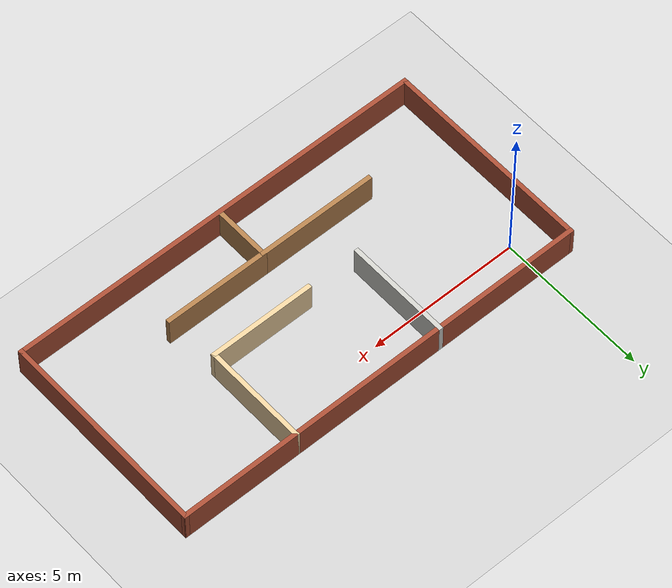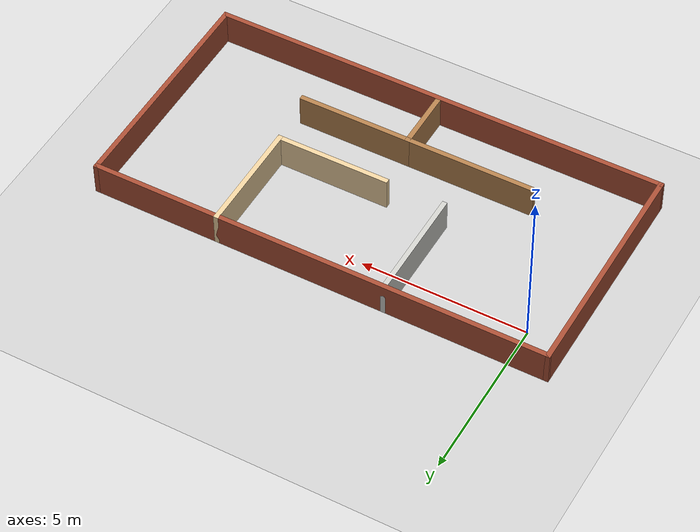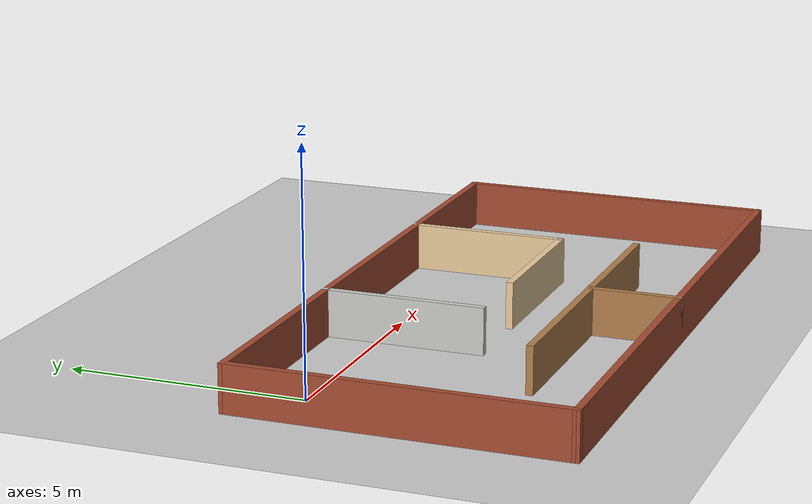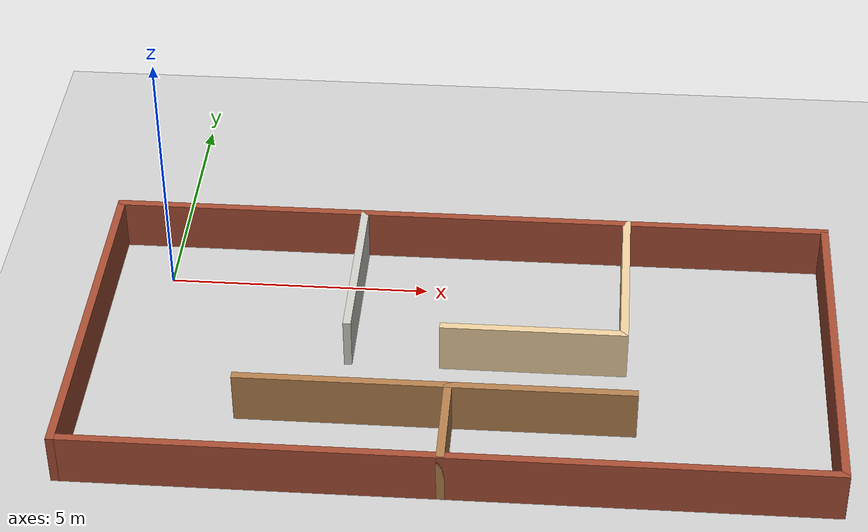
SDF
<sdf version="1.7">
 <world name="default">
  <light name="sun" type="directional">
   <pose>0 0 10 0 -0 0</pose>
   <diffuse>0.8 0.8 0.8 1</diffuse>
   <specular>0.2 0.2 0.2 1</specular>
   <attenuation>
    <range>1000</range>
    <constant>0.9</constant>
    <linear>0.01</linear>
    <quadratic>0.001</quadratic>
   </attenuation>
   <direction>-0.5 0.1 -0.9</direction>
   <spot><inner_angle>0</inner_angle><outer_angle>0</outer_angle><falloff>0</falloff></spot>
  </light>
  <model name="ground_plane">
   <static>1</static>
   <link name="link">
    <collision name="collision">
     <geometry><plane><normal>0 0 1</normal><size>100 100</size></plane></geometry>
     <surface>
      <contact><collide_bitmask>65535</collide_bitmask></contact>
      <friction><ode><mu>100</mu><mu2>50</mu2></ode></friction>
     </surface>
    </collision>
    <visual name="visual">
     <cast_shadows>0</cast_shadows>
     <geometry><plane><normal>0 0 1</normal><size>100 100</size></plane></geometry>
     <material>
      <script><uri>file://media/materials/scripts/gazebo.material</uri><name>Gazebo/Grey</name></script>
     </material>
    </visual>
   </link>
  </model>
  <gravity>0 0 -9.8</gravity>
  <magnetic_field>6e-06 2.3e-05 -4.2e-05</magnetic_field>
  <atmosphere type="adiabatic"/>
  <physics type="ode">
   <max_step_size>0.001</max_step_size>
   <real_time_factor>1</real_time_factor>
   <real_time_update_rate>1000</real_time_update_rate>
  </physics>
  <scene><ambient>0.4 0.4 0.4 1</ambient><background>0.7 0.7 0.7 1</background><shadows>1</shadows></scene>
  <spherical_coordinates>
   <surface_model>EARTH_WGS84</surface_model>
   <latitude_deg>0</latitude_deg>
   <longitude_deg>0</longitude_deg>
   <elevation>0</elevation>
   <heading_deg>0</heading_deg>
  </spherical_coordinates>
  <model name="simple_house">
   <pose>5.77151 -0.723287 0 0 -0 0</pose>
   <link name="Wall_16">
    <collision name="Wall_16_Collision">
     <geometry><box><size>7.00002 0.15 1</size></box></geometry>
     <pose>0 0 0.5 0 -0 0</pose>
    </collision>
    <visual name="Wall_16_Visual">
     <pose>0 0 0.5 0 -0 0</pose>
     <geometry><box><size>7.00002 0.15 1</size></box></geometry>
     <material>
      <script><uri>file://media/materials/scripts/gazebo.material</uri><name>Gazebo/Bricks</name></script>
      <ambient>1 1 1 1</ambient>
     </material>
     <meta><layer>0</layer></meta>
    </visual>
    <pose>-6.925 -1.55299 0 0 -0 1.57065</pose>
   </link>
   <link name="Wall_17">
    <collision name="Wall_17_Collision">
     <geometry><box><size>14 0.15 1</size></box></geometry>
     <pose>0 0 0.5 0 -0 0</pose>
    </collision>
    <visual name="Wall_17_Visual">
     <pose>0 0 0.5 0 -0 0</pose>
     <geometry><box><size>14 0.15 1</size></box></geometry>
     <material>
      <script><uri>file://media/materials/scripts/gazebo.material</uri><name>Gazebo/Bricks</name></script>
      <ambient>1 1 1 1</ambient>
     </material>
     <meta><layer>0</layer></meta>
    </visual>
    <pose>0.000499 1.87201 0 0 -0 0</pose>
   </link>
   <link name="Wall_18">
    <collision name="Wall_18_Collision">
     <geometry><box><size>7.00002 0.15 1</size></box></geometry>
     <pose>0 0 0.5 0 -0 0</pose>
    </collision>
    <visual name="Wall_18_Visual">
     <pose>0 0 0.5 0 -0 0</pose>
     <geometry><box><size>7.00002 0.15 1</size></box></geometry>
     <material>
      <script><uri>file://media/materials/scripts/gazebo.material</uri><name>Gazebo/Bricks</name></script>
      <ambient>1 1 1 1</ambient>
     </material>
     <meta><layer>0</layer></meta>
    </visual>
    <pose>6.925 -1.55299 0 0 -0 -1.57094</pose>
   </link>
   <link name="Wall_19">
    <collision name="Wall_19_Collision">
     <geometry><box><size>14 0.15 1</size></box></geometry>
     <pose>0 0 0.5 0 -0 0</pose>
    </collision>
    <visual name="Wall_19_Visual">
     <pose>0 0 0.5 0 -0 0</pose>
     <geometry><box><size>14 0.15 1</size></box></geometry>
     <material>
      <script><uri>file://media/materials/scripts/gazebo.material</uri><name>Gazebo/Bricks</name></script>
      <ambient>1 1 1 1</ambient>
     </material>
     <meta><layer>0</layer></meta>
    </visual>
    <pose>-0.000501 -4.97799 0 0 -0 3.14159</pose>
   </link>
   <link name="Wall_22">
    <collision name="Wall_22_Collision">
     <geometry><box><size>3.5 0.15 1</size></box></geometry>
     <pose>0 0 0.5 0 -0 0</pose>
    </collision>
    <visual name="Wall_22_Visual">
     <pose>0 0 0.5 0 -0 0</pose>
     <geometry><box><size>3.5 0.15 1</size></box></geometry>
     <material>
      <script><uri>file://media/materials/scripts/gazebo.material</uri><name>Gazebo/CeilingTiled</name></script>
      <ambient>0.921569 0.807843 0.615686 1</ambient>
     </material>
     <meta><layer>0</layer></meta>
    </visual>
    <pose>-2.0745 0.197011 0 0 -0 -1.5708</pose>
   </link>
   <link name="Wall_25">
    <collision name="Wall_25_Collision">
     <geometry><box><size>3.5 0.15 1</size></box></geometry>
     <pose>0 0 0.5 0 -0 0</pose>
    </collision>
    <visual name="Wall_25_Visual">
     <pose>0 0 0.5 0 -0 0</pose>
     <geometry><box><size>3.5 0.15 1</size></box></geometry>
     <material>
      <script><uri>file://media/materials/scripts/gazebo.material</uri><name>Gazebo/Grey</name></script>
      <ambient>0.921569 0.807843 0.615686 1</ambient>
     </material>
     <meta><layer>0</layer></meta>
    </visual>
    <pose>3.0755 0.197011 0 0 -0 -1.5708</pose>
   </link>
   <link name="Wall_26">
    <collision name="Wall_26_Collision">
     <geometry><box><size>3.5 0.15 1</size></box></geometry>
     <pose>0 0 0.5 0 -0 0</pose>
    </collision>
    <visual name="Wall_26_Visual">
     <pose>0 0 0.5 0 -0 0</pose>
     <geometry><box><size>3.5 0.15 1</size></box></geometry>
     <material>
      <script><uri>file://media/materials/scripts/gazebo.material</uri><name>Gazebo/Grey</name></script>
      <ambient>0.921569 0.807843 0.615686 1</ambient>
     </material>
     <meta><layer>0</layer></meta>
    </visual>
    <pose>1.4005 -1.47799 0 0 -0 3.14159</pose>
   </link>
   <link name="Wall_29">
    <collision name="Wall_29_Collision">
     <geometry><box><size>2 0.15 1</size></box></geometry>
     <pose>0 0 0.5 0 -0 0</pose>
    </collision>
    <visual name="Wall_29_Visual">
     <pose>0 0 0.5 0 -0 0</pose>
     <geometry><box><size>2 0.15 1</size></box></geometry>
     <material>
      <script><uri>file://media/materials/scripts/gazebo.material</uri><name>Gazebo/Wood</name></script>
      <ambient>1 1 1 1</ambient>
     </material>
     <meta><layer>0</layer></meta>
    </visual>
    <pose>-0.075501 -4.05299 0 0 -0 1.5708</pose>
   </link>
   <link name="Wall_30">
    <collision name="Wall_30_Collision">
     <geometry><box><size>4 0.15 1</size></box></geometry>
     <pose>0 0 0.5 0 -0 0</pose>
    </collision>
    <visual name="Wall_30_Visual">
     <pose>0 0 0.5 0 -0 0</pose>
     <geometry><box><size>4 0.15 1</size></box></geometry>
     <material>
      <script><uri>file://media/materials/scripts/gazebo.material</uri><name>Gazebo/Wood</name></script>
      <ambient>1 1 1 1</ambient>
     </material>
     <meta><layer>0</layer></meta>
    </visual>
    <pose>-2.0005 -3.12799 0 0 -0 3.14159</pose>
   </link>
   <link name="Wall_32">
    <collision name="Wall_32_Collision">
     <geometry><box><size>3.5 0.15 1</size></box></geometry>
     <pose>0 0 0.5 0 -0 0</pose>
    </collision>
    <visual name="Wall_32_Visual">
     <pose>0 0 0.5 0 -0 0</pose>
     <geometry><box><size>3.5 0.15 1</size></box></geometry>
     <material>
      <script><uri>file://media/materials/scripts/gazebo.material</uri><name>Gazebo/Wood</name></script>
      <ambient>1 1 1 1</ambient>
     </material>
     <meta><layer>0</layer></meta>
    </visual>
    <pose>1.5995 -3.12799 0 0 -0 0</pose>
   </link>
   <static>1</static>
  </model>
 </world>
</sdf>
